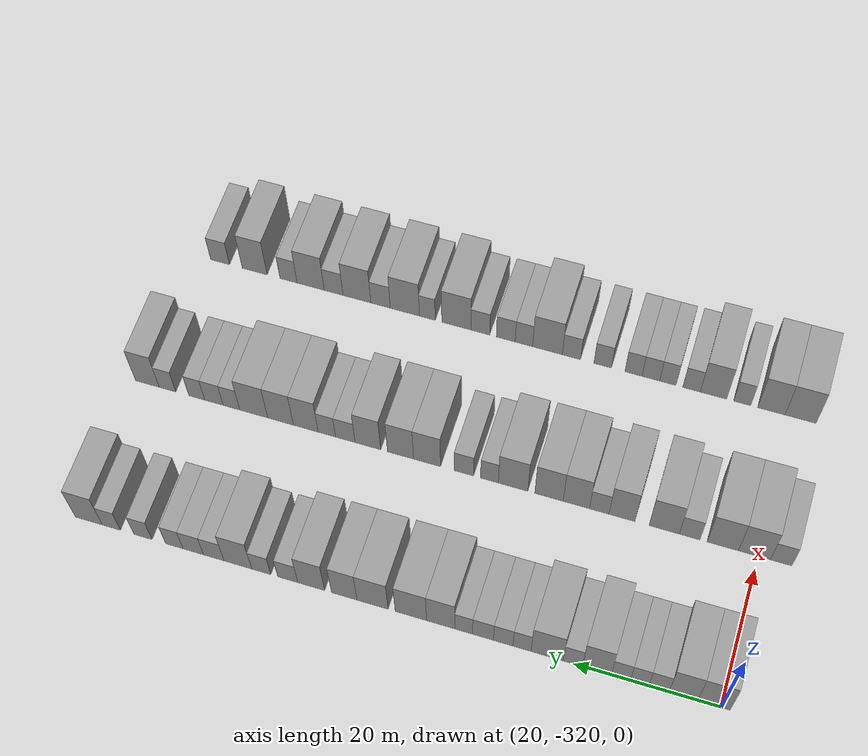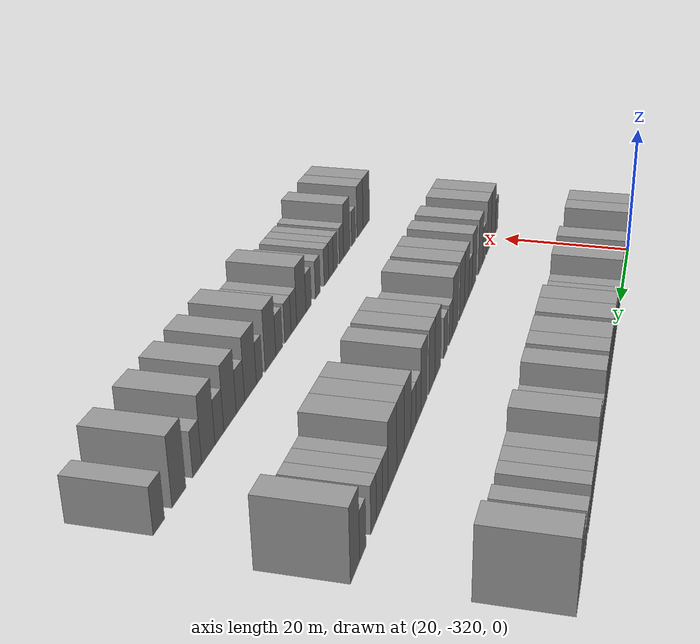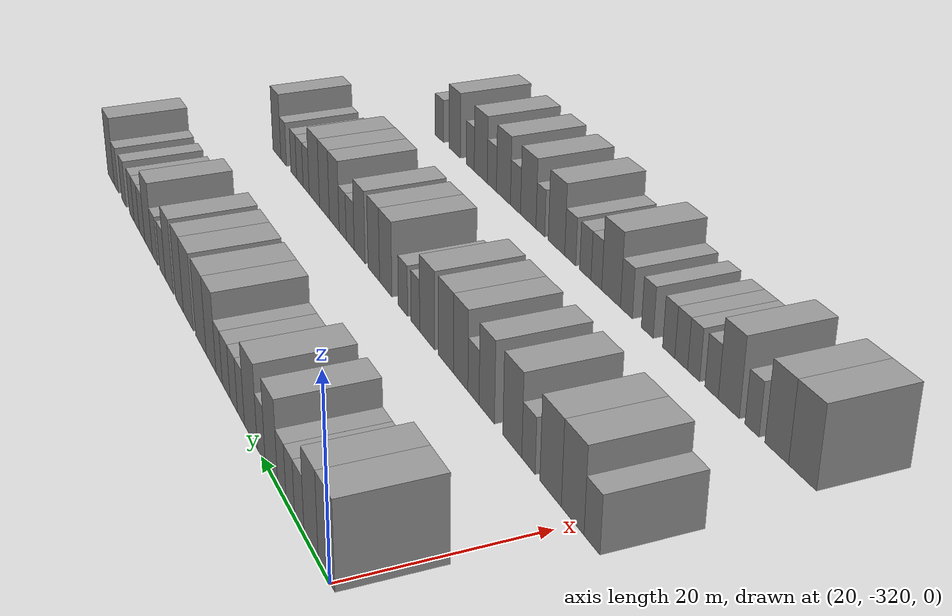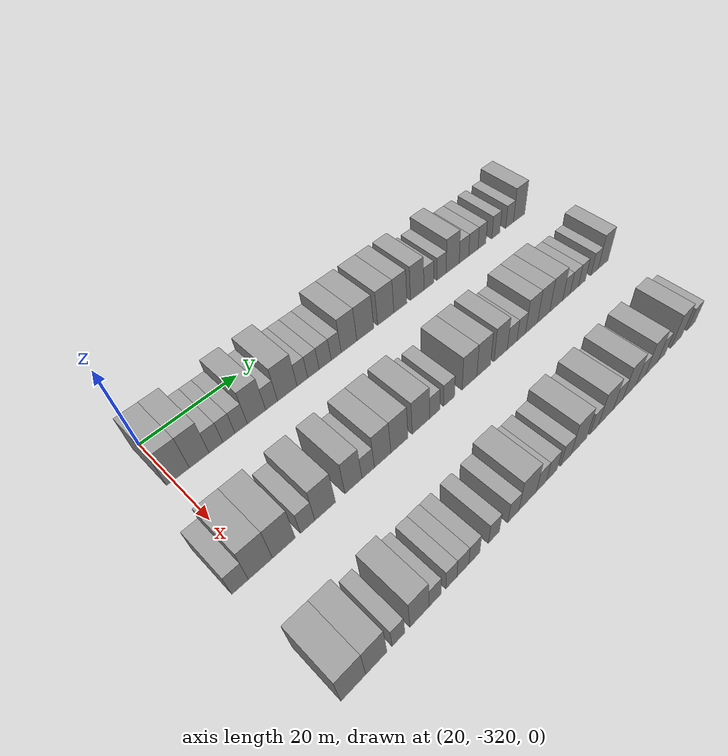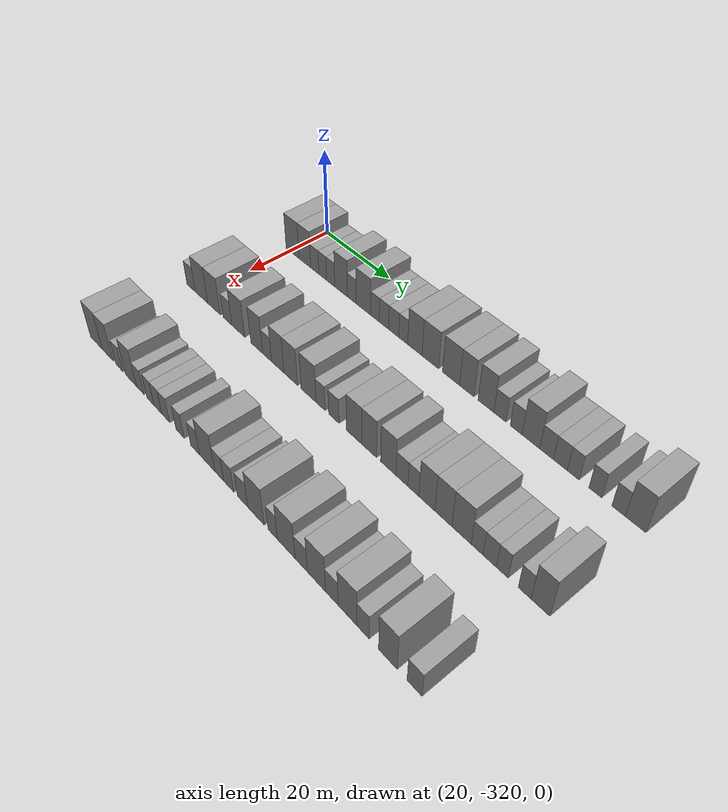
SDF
<sdf version="1.6">
 <world name="default">
  <model name="building_12">
   <static>1</static>
   <pose>25.0000 -319.0216 0 0.000000 0.000000 0.000000</pose>
   <link name="link">
    <pose>0 0 4.50 0 0 0</pose>
    <collision name="collision"><geometry><box><size>10.0000 4.3639 9.0000</size></box></geometry></collision>
    <visual name="visual">
     <cast_shadows>0</cast_shadows>
     <geometry><box><size>10.0000 4.3639 9.0000</size></box></geometry>
     <material>
      <script>
       <uri>model://grey_wall/materials/scripts</uri>
       <uri>model://grey_wall/materials/textures</uri>
       <name>vrc/grey_wall</name>
      </script>
     </material>
    </visual>
   </link>
  </model>
  <model name="building_13">
   <static>1</static>
   <pose>25.0000 -314.9039 0 0.000000 0.000000 0.000000</pose>
   <link name="link">
    <pose>0 0 4.50 0 0 0</pose>
    <collision name="collision"><geometry><box><size>10.0000 3.8716 9.0000</size></box></geometry></collision>
    <visual name="visual">
     <cast_shadows>0</cast_shadows>
     <geometry><box><size>10.0000 3.8716 9.0000</size></box></geometry>
     <material>
      <script>
       <uri>model://grey_wall/materials/scripts</uri>
       <uri>model://grey_wall/materials/textures</uri>
       <name>vrc/grey_wall</name>
      </script>
     </material>
    </visual>
   </link>
  </model>
  <model name="building_14">
   <static>1</static>
   <pose>25.0000 -311.6025 0 0.000000 0.000000 0.000000</pose>
   <link name="link">
    <pose>0 0 3.00 0 0 0</pose>
    <collision name="collision"><geometry><box><size>10.0000 2.7310 6.0000</size></box></geometry></collision>
    <visual name="visual">
     <cast_shadows>0</cast_shadows>
     <geometry><box><size>10.0000 2.7310 6.0000</size></box></geometry>
     <material>
      <script>
       <uri>model://grey_wall/materials/scripts</uri>
       <uri>model://grey_wall/materials/textures</uri>
       <name>vrc/grey_wall</name>
      </script>
     </material>
    </visual>
   </link>
  </model>
  <model name="building_15">
   <static>1</static>
   <pose>25.0000 -308.9841 0 0.000000 0.000000 0.000000</pose>
   <link name="link">
    <pose>0 0 3.00 0 0 0</pose>
    <collision name="collision"><geometry><box><size>10.0000 2.5059 6.0000</size></box></geometry></collision>
    <visual name="visual">
     <cast_shadows>0</cast_shadows>
     <geometry><box><size>10.0000 2.5059 6.0000</size></box></geometry>
     <material>
      <script>
       <uri>model://grey_wall/materials/scripts</uri>
       <uri>model://grey_wall/materials/textures</uri>
       <name>vrc/grey_wall</name>
      </script>
     </material>
    </visual>
   </link>
  </model>
  <model name="building_16">
   <static>1</static>
   <pose>25.0000 -306.4358 0 0.000000 0.000000 0.000000</pose>
   <link name="link">
    <pose>0 0 3.00 0 0 0</pose>
    <collision name="collision"><geometry><box><size>10.0000 2.5905 6.0000</size></box></geometry></collision>
    <visual name="visual">
     <cast_shadows>0</cast_shadows>
     <geometry><box><size>10.0000 2.5905 6.0000</size></box></geometry>
     <material>
      <script>
       <uri>model://grey_wall/materials/scripts</uri>
       <uri>model://grey_wall/materials/textures</uri>
       <name>vrc/grey_wall</name>
      </script>
     </material>
    </visual>
   </link>
  </model>
  <model name="building_17">
   <static>1</static>
   <pose>25.0000 -303.1748 0 0.000000 0.000000 0.000000</pose>
   <link name="link">
    <pose>0 0 4.50 0 0 0</pose>
    <collision name="collision"><geometry><box><size>10.0000 3.9315 9.0000</size></box></geometry></collision>
    <visual name="visual">
     <cast_shadows>0</cast_shadows>
     <geometry><box><size>10.0000 3.9315 9.0000</size></box></geometry>
     <material>
      <script>
       <uri>model://grey_wall/materials/scripts</uri>
       <uri>model://grey_wall/materials/textures</uri>
       <name>vrc/grey_wall</name>
      </script>
     </material>
    </visual>
   </link>
  </model>
  <model name="building_18">
   <static>1</static>
   <pose>25.0000 -299.8987 0 0.000000 0.000000 0.000000</pose>
   <link name="link">
    <pose>0 0 3.00 0 0 0</pose>
    <collision name="collision"><geometry><box><size>10.0000 2.6207 6.0000</size></box></geometry></collision>
    <visual name="visual">
     <cast_shadows>0</cast_shadows>
     <geometry><box><size>10.0000 2.6207 6.0000</size></box></geometry>
     <material>
      <script>
       <uri>model://grey_wall/materials/scripts</uri>
       <uri>model://grey_wall/materials/textures</uri>
       <name>vrc/grey_wall</name>
      </script>
     </material>
    </visual>
   </link>
  </model>
  <model name="building_19">
   <static>1</static>
   <pose>25.0000 -296.3752 0 0.000000 0.000000 0.000000</pose>
   <link name="link">
    <pose>0 0 4.50 0 0 0</pose>
    <collision name="collision"><geometry><box><size>10.0000 4.4264 9.0000</size></box></geometry></collision>
    <visual name="visual">
     <cast_shadows>0</cast_shadows>
     <geometry><box><size>10.0000 4.4264 9.0000</size></box></geometry>
     <material>
      <script>
       <uri>model://grey_wall/materials/scripts</uri>
       <uri>model://grey_wall/materials/textures</uri>
       <name>vrc/grey_wall</name>
      </script>
     </material>
    </visual>
   </link>
  </model>
  <model name="building_20">
   <static>1</static>
   <pose>25.0000 -292.9211 0 0.000000 0.000000 0.000000</pose>
   <link name="link">
    <pose>0 0 3.00 0 0 0</pose>
    <collision name="collision"><geometry><box><size>10.0000 2.4818 6.0000</size></box></geometry></collision>
    <visual name="visual">
     <cast_shadows>0</cast_shadows>
     <geometry><box><size>10.0000 2.4818 6.0000</size></box></geometry>
     <material>
      <script>
       <uri>model://grey_wall/materials/scripts</uri>
       <uri>model://grey_wall/materials/textures</uri>
       <name>vrc/grey_wall</name>
      </script>
     </material>
    </visual>
   </link>
  </model>
  <model name="building_21">
   <static>1</static>
   <pose>25.0000 -290.3262 0 0.000000 0.000000 0.000000</pose>
   <link name="link">
    <pose>0 0 3.00 0 0 0</pose>
    <collision name="collision"><geometry><box><size>10.0000 2.7080 6.0000</size></box></geometry></collision>
    <visual name="visual">
     <cast_shadows>0</cast_shadows>
     <geometry><box><size>10.0000 2.7080 6.0000</size></box></geometry>
     <material>
      <script>
       <uri>model://grey_wall/materials/scripts</uri>
       <uri>model://grey_wall/materials/textures</uri>
       <name>vrc/grey_wall</name>
      </script>
     </material>
    </visual>
   </link>
  </model>
  <model name="building_22">
   <static>1</static>
   <pose>25.0000 -287.5246 0 0.000000 0.000000 0.000000</pose>
   <link name="link">
    <pose>0 0 3.00 0 0 0</pose>
    <collision name="collision"><geometry><box><size>10.0000 2.8952 6.0000</size></box></geometry></collision>
    <visual name="visual">
     <cast_shadows>0</cast_shadows>
     <geometry><box><size>10.0000 2.8952 6.0000</size></box></geometry>
     <material>
      <script>
       <uri>model://grey_wall/materials/scripts</uri>
       <uri>model://grey_wall/materials/textures</uri>
       <name>vrc/grey_wall</name>
      </script>
     </material>
    </visual>
   </link>
  </model>
  <model name="building_23">
   <static>1</static>
   <pose>25.0000 -284.8401 0 0.000000 0.000000 0.000000</pose>
   <link name="link">
    <pose>0 0 3.00 0 0 0</pose>
    <collision name="collision"><geometry><box><size>10.0000 2.4737 6.0000</size></box></geometry></collision>
    <visual name="visual">
     <cast_shadows>0</cast_shadows>
     <geometry><box><size>10.0000 2.4737 6.0000</size></box></geometry>
     <material>
      <script>
       <uri>model://grey_wall/materials/scripts</uri>
       <uri>model://grey_wall/materials/textures</uri>
       <name>vrc/grey_wall</name>
      </script>
     </material>
    </visual>
   </link>
  </model>
  <model name="building_24">
   <static>1</static>
   <pose>25.0000 -281.6350 0 0.000000 0.000000 0.000000</pose>
   <link name="link">
    <pose>0 0 4.50 0 0 0</pose>
    <collision name="collision"><geometry><box><size>10.0000 3.9365 9.0000</size></box></geometry></collision>
    <visual name="visual">
     <cast_shadows>0</cast_shadows>
     <geometry><box><size>10.0000 3.9365 9.0000</size></box></geometry>
     <material>
      <script>
       <uri>model://grey_wall/materials/scripts</uri>
       <uri>model://grey_wall/materials/textures</uri>
       <name>vrc/grey_wall</name>
      </script>
     </material>
    </visual>
   </link>
  </model>
  <model name="building_25">
   <static>1</static>
   <pose>25.0000 -277.4600 0 0.000000 0.000000 0.000000</pose>
   <link name="link">
    <pose>0 0 4.50 0 0 0</pose>
    <collision name="collision"><geometry><box><size>10.0000 4.4136 9.0000</size></box></geometry></collision>
    <visual name="visual">
     <cast_shadows>0</cast_shadows>
     <geometry><box><size>10.0000 4.4136 9.0000</size></box></geometry>
     <material>
      <script>
       <uri>model://grey_wall/materials/scripts</uri>
       <uri>model://grey_wall/materials/textures</uri>
       <name>vrc/grey_wall</name>
      </script>
     </material>
    </visual>
   </link>
  </model>
  <model name="building_26">
   <static>1</static>
   <pose>25.0000 -272.0558 0 0.000000 0.000000 0.000000</pose>
   <link name="link">
    <pose>0 0 4.50 0 0 0</pose>
    <collision name="collision"><geometry><box><size>10.0000 4.3947 9.0000</size></box></geometry></collision>
    <visual name="visual">
     <cast_shadows>0</cast_shadows>
     <geometry><box><size>10.0000 4.3947 9.0000</size></box></geometry>
     <material>
      <script>
       <uri>model://grey_wall/materials/scripts</uri>
       <uri>model://grey_wall/materials/textures</uri>
       <name>vrc/grey_wall</name>
      </script>
     </material>
    </visual>
   </link>
  </model>
  <model name="building_27">
   <static>1</static>
   <pose>25.0000 -268.0545 0 0.000000 0.000000 0.000000</pose>
   <link name="link">
    <pose>0 0 4.50 0 0 0</pose>
    <collision name="collision"><geometry><box><size>10.0000 3.6079 9.0000</size></box></geometry></collision>
    <visual name="visual">
     <cast_shadows>0</cast_shadows>
     <geometry><box><size>10.0000 3.6079 9.0000</size></box></geometry>
     <material>
      <script>
       <uri>model://grey_wall/materials/scripts</uri>
       <uri>model://grey_wall/materials/textures</uri>
       <name>vrc/grey_wall</name>
      </script>
     </material>
    </visual>
   </link>
  </model>
  <model name="building_28">
   <static>1</static>
   <pose>25.0000 -263.3341 0 0.000000 0.000000 0.000000</pose>
   <link name="link">
    <pose>0 0 4.50 0 0 0</pose>
    <collision name="collision"><geometry><box><size>10.0000 3.8330 9.0000</size></box></geometry></collision>
    <visual name="visual">
     <cast_shadows>0</cast_shadows>
     <geometry><box><size>10.0000 3.8330 9.0000</size></box></geometry>
     <material>
      <script>
       <uri>model://grey_wall/materials/scripts</uri>
       <uri>model://grey_wall/materials/textures</uri>
       <name>vrc/grey_wall</name>
      </script>
     </material>
    </visual>
   </link>
  </model>
  <model name="building_29">
   <static>1</static>
   <pose>25.0000 -259.9843 0 0.000000 0.000000 0.000000</pose>
   <link name="link">
    <pose>0 0 3.00 0 0 0</pose>
    <collision name="collision"><geometry><box><size>10.0000 2.8665 6.0000</size></box></geometry></collision>
    <visual name="visual">
     <cast_shadows>0</cast_shadows>
     <geometry><box><size>10.0000 2.8665 6.0000</size></box></geometry>
     <material>
      <script>
       <uri>model://grey_wall/materials/scripts</uri>
       <uri>model://grey_wall/materials/textures</uri>
       <name>vrc/grey_wall</name>
      </script>
     </material>
    </visual>
   </link>
  </model>
  <model name="building_30">
   <static>1</static>
   <pose>25.0000 -256.1881 0 0.000000 0.000000 0.000000</pose>
   <link name="link">
    <pose>0 0 3.00 0 0 0</pose>
    <collision name="collision"><geometry><box><size>10.0000 2.7260 6.0000</size></box></geometry></collision>
    <visual name="visual">
     <cast_shadows>0</cast_shadows>
     <geometry><box><size>10.0000 2.7260 6.0000</size></box></geometry>
     <material>
      <script>
       <uri>model://grey_wall/materials/scripts</uri>
       <uri>model://grey_wall/materials/textures</uri>
       <name>vrc/grey_wall</name>
      </script>
     </material>
    </visual>
   </link>
  </model>
  <model name="building_31">
   <static>1</static>
   <pose>25.0000 -252.8242 0 0.000000 0.000000 0.000000</pose>
   <link name="link">
    <pose>0 0 4.50 0 0 0</pose>
    <collision name="collision"><geometry><box><size>10.0000 4.0017 9.0000</size></box></geometry></collision>
    <visual name="visual">
     <cast_shadows>0</cast_shadows>
     <geometry><box><size>10.0000 4.0017 9.0000</size></box></geometry>
     <material>
      <script>
       <uri>model://grey_wall/materials/scripts</uri>
       <uri>model://grey_wall/materials/textures</uri>
       <name>vrc/grey_wall</name>
      </script>
     </material>
    </visual>
   </link>
  </model>
  <model name="building_32">
   <static>1</static>
   <pose>25.0000 -249.3260 0 0.000000 0.000000 0.000000</pose>
   <link name="link">
    <pose>0 0 3.00 0 0 0</pose>
    <collision name="collision"><geometry><box><size>10.0000 2.9947 6.0000</size></box></geometry></collision>
    <visual name="visual">
     <cast_shadows>0</cast_shadows>
     <geometry><box><size>10.0000 2.9947 6.0000</size></box></geometry>
     <material>
      <script>
       <uri>model://grey_wall/materials/scripts</uri>
       <uri>model://grey_wall/materials/textures</uri>
       <name>vrc/grey_wall</name>
      </script>
     </material>
    </visual>
   </link>
  </model>
  <model name="building_33">
   <static>1</static>
   <pose>25.0000 -246.3432 0 0.000000 0.000000 0.000000</pose>
   <link name="link">
    <pose>0 0 3.00 0 0 0</pose>
    <collision name="collision"><geometry><box><size>10.0000 2.9708 6.0000</size></box></geometry></collision>
    <visual name="visual">
     <cast_shadows>0</cast_shadows>
     <geometry><box><size>10.0000 2.9708 6.0000</size></box></geometry>
     <material>
      <script>
       <uri>model://grey_wall/materials/scripts</uri>
       <uri>model://grey_wall/materials/textures</uri>
       <name>vrc/grey_wall</name>
      </script>
     </material>
    </visual>
   </link>
  </model>
  <model name="building_34">
   <static>1</static>
   <pose>25.0000 -243.5842 0 0.000000 0.000000 0.000000</pose>
   <link name="link">
    <pose>0 0 3.00 0 0 0</pose>
    <collision name="collision"><geometry><box><size>10.0000 2.5471 6.0000</size></box></geometry></collision>
    <visual name="visual">
     <cast_shadows>0</cast_shadows>
     <geometry><box><size>10.0000 2.5471 6.0000</size></box></geometry>
     <material>
      <script>
       <uri>model://grey_wall/materials/scripts</uri>
       <uri>model://grey_wall/materials/textures</uri>
       <name>vrc/grey_wall</name>
      </script>
     </material>
    </visual>
   </link>
  </model>
  <model name="building_35">
   <static>1</static>
   <pose>25.0000 -238.9845 0 0.000000 0.000000 0.000000</pose>
   <link name="link">
    <pose>0 0 3.00 0 0 0</pose>
    <collision name="collision"><geometry><box><size>10.0000 2.6523 6.0000</size></box></geometry></collision>
    <visual name="visual">
     <cast_shadows>0</cast_shadows>
     <geometry><box><size>10.0000 2.6523 6.0000</size></box></geometry>
     <material>
      <script>
       <uri>model://grey_wall/materials/scripts</uri>
       <uri>model://grey_wall/materials/textures</uri>
       <name>vrc/grey_wall</name>
      </script>
     </material>
    </visual>
   </link>
  </model>
  <model name="building_36">
   <static>1</static>
   <pose>25.0000 -234.3334 0 0.000000 0.000000 0.000000</pose>
   <link name="link">
    <pose>0 0 3.00 0 0 0</pose>
    <collision name="collision"><geometry><box><size>10.0000 2.6500 6.0000</size></box></geometry></collision>
    <visual name="visual">
     <cast_shadows>0</cast_shadows>
     <geometry><box><size>10.0000 2.6500 6.0000</size></box></geometry>
     <material>
      <script>
       <uri>model://grey_wall/materials/scripts</uri>
       <uri>model://grey_wall/materials/textures</uri>
       <name>vrc/grey_wall</name>
      </script>
     </material>
    </visual>
   </link>
  </model>
  <model name="building_37">
   <static>1</static>
   <pose>25.0000 -231.0118 0 0.000000 0.000000 0.000000</pose>
   <link name="link">
    <pose>0 0 4.50 0 0 0</pose>
    <collision name="collision"><geometry><box><size>10.0000 3.9930 9.0000</size></box></geometry></collision>
    <visual name="visual">
     <cast_shadows>0</cast_shadows>
     <geometry><box><size>10.0000 3.9930 9.0000</size></box></geometry>
     <material>
      <script>
       <uri>model://grey_wall/materials/scripts</uri>
       <uri>model://grey_wall/materials/textures</uri>
       <name>vrc/grey_wall</name>
      </script>
     </material>
    </visual>
   </link>
  </model>
  <model name="building_202">
   <static>1</static>
   <pose>47.0000 -323.1811 0 0.000000 0.000000 0.000000</pose>
   <link name="link">
    <pose>0 0 3.00 0 0 0</pose>
    <collision name="collision"><geometry><box><size>10.0000 2.9801 6.0000</size></box></geometry></collision>
    <visual name="visual">
     <cast_shadows>0</cast_shadows>
     <geometry><box><size>10.0000 2.9801 6.0000</size></box></geometry>
     <material>
      <script>
       <uri>model://grey_wall/materials/scripts</uri>
       <uri>model://grey_wall/materials/textures</uri>
       <name>vrc/grey_wall</name>
      </script>
     </material>
    </visual>
   </link>
  </model>
  <model name="building_203">
   <static>1</static>
   <pose>47.0000 -319.4711 0 0.000000 0.000000 0.000000</pose>
   <link name="link">
    <pose>0 0 4.50 0 0 0</pose>
    <collision name="collision"><geometry><box><size>10.0000 4.4400 9.0000</size></box></geometry></collision>
    <visual name="visual">
     <cast_shadows>0</cast_shadows>
     <geometry><box><size>10.0000 4.4400 9.0000</size></box></geometry>
     <material>
      <script>
       <uri>model://grey_wall/materials/scripts</uri>
       <uri>model://grey_wall/materials/textures</uri>
       <name>vrc/grey_wall</name>
      </script>
     </material>
    </visual>
   </link>
  </model>
  <model name="building_204">
   <static>1</static>
   <pose>47.0000 -315.0537 0 0.000000 0.000000 0.000000</pose>
   <link name="link">
    <pose>0 0 4.50 0 0 0</pose>
    <collision name="collision"><geometry><box><size>10.0000 4.3947 9.0000</size></box></geometry></collision>
    <visual name="visual">
     <cast_shadows>0</cast_shadows>
     <geometry><box><size>10.0000 4.3947 9.0000</size></box></geometry>
     <material>
      <script>
       <uri>model://grey_wall/materials/scripts</uri>
       <uri>model://grey_wall/materials/textures</uri>
       <name>vrc/grey_wall</name>
      </script>
     </material>
    </visual>
   </link>
  </model>
  <model name="building_205">
   <static>1</static>
   <pose>47.0000 -310.4044 0 0.000000 0.000000 0.000000</pose>
   <link name="link">
    <pose>0 0 3.00 0 0 0</pose>
    <collision name="collision"><geometry><box><size>10.0000 2.9040 6.0000</size></box></geometry></collision>
    <visual name="visual">
     <cast_shadows>0</cast_shadows>
     <geometry><box><size>10.0000 2.9040 6.0000</size></box></geometry>
     <material>
      <script>
       <uri>model://grey_wall/materials/scripts</uri>
       <uri>model://grey_wall/materials/textures</uri>
       <name>vrc/grey_wall</name>
      </script>
     </material>
    </visual>
   </link>
  </model>
  <model name="building_206">
   <static>1</static>
   <pose>47.0000 -306.8238 0 0.000000 0.000000 0.000000</pose>
   <link name="link">
    <pose>0 0 4.50 0 0 0</pose>
    <collision name="collision"><geometry><box><size>10.0000 4.2571 9.0000</size></box></geometry></collision>
    <visual name="visual">
     <cast_shadows>0</cast_shadows>
     <geometry><box><size>10.0000 4.2571 9.0000</size></box></geometry>
     <material>
      <script>
       <uri>model://grey_wall/materials/scripts</uri>
       <uri>model://grey_wall/materials/textures</uri>
       <name>vrc/grey_wall</name>
      </script>
     </material>
    </visual>
   </link>
  </model>
  <model name="building_207">
   <static>1</static>
   <pose>47.0000 -300.8416 0 0.000000 0.000000 0.000000</pose>
   <link name="link">
    <pose>0 0 4.50 0 0 0</pose>
    <collision name="collision"><geometry><box><size>10.0000 3.7074 9.0000</size></box></geometry></collision>
    <visual name="visual">
     <cast_shadows>0</cast_shadows>
     <geometry><box><size>10.0000 3.7074 9.0000</size></box></geometry>
     <material>
      <script>
       <uri>model://grey_wall/materials/scripts</uri>
       <uri>model://grey_wall/materials/textures</uri>
       <name>vrc/grey_wall</name>
      </script>
     </material>
    </visual>
   </link>
  </model>
  <model name="building_208">
   <static>1</static>
   <pose>47.0000 -297.5994 0 0.000000 0.000000 0.000000</pose>
   <link name="link">
    <pose>0 0 3.00 0 0 0</pose>
    <collision name="collision"><geometry><box><size>10.0000 2.7769 6.0000</size></box></geometry></collision>
    <visual name="visual">
     <cast_shadows>0</cast_shadows>
     <geometry><box><size>10.0000 2.7769 6.0000</size></box></geometry>
     <material>
      <script>
       <uri>model://grey_wall/materials/scripts</uri>
       <uri>model://grey_wall/materials/textures</uri>
       <name>vrc/grey_wall</name>
      </script>
     </material>
    </visual>
   </link>
  </model>
  <model name="building_209">
   <static>1</static>
   <pose>47.0000 -294.3260 0 0.000000 0.000000 0.000000</pose>
   <link name="link">
    <pose>0 0 4.50 0 0 0</pose>
    <collision name="collision"><geometry><box><size>10.0000 3.7700 9.0000</size></box></geometry></collision>
    <visual name="visual">
     <cast_shadows>0</cast_shadows>
     <geometry><box><size>10.0000 3.7700 9.0000</size></box></geometry>
     <material>
      <script>
       <uri>model://grey_wall/materials/scripts</uri>
       <uri>model://grey_wall/materials/textures</uri>
       <name>vrc/grey_wall</name>
      </script>
     </material>
    </visual>
   </link>
  </model>
  <model name="building_210">
   <static>1</static>
   <pose>47.0000 -290.4123 0 0.000000 0.000000 0.000000</pose>
   <link name="link">
    <pose>0 0 4.50 0 0 0</pose>
    <collision name="collision"><geometry><box><size>10.0000 4.0572 9.0000</size></box></geometry></collision>
    <visual name="visual">
     <cast_shadows>0</cast_shadows>
     <geometry><box><size>10.0000 4.0572 9.0000</size></box></geometry>
     <material>
      <script>
       <uri>model://grey_wall/materials/scripts</uri>
       <uri>model://grey_wall/materials/textures</uri>
       <name>vrc/grey_wall</name>
      </script>
     </material>
    </visual>
   </link>
  </model>
  <model name="building_211">
   <static>1</static>
   <pose>47.0000 -285.2453 0 0.000000 0.000000 0.000000</pose>
   <link name="link">
    <pose>0 0 4.50 0 0 0</pose>
    <collision name="collision"><geometry><box><size>10.0000 4.2769 9.0000</size></box></geometry></collision>
    <visual name="visual">
     <cast_shadows>0</cast_shadows>
     <geometry><box><size>10.0000 4.2769 9.0000</size></box></geometry>
     <material>
      <script>
       <uri>model://grey_wall/materials/scripts</uri>
       <uri>model://grey_wall/materials/textures</uri>
       <name>vrc/grey_wall</name>
      </script>
     </material>
    </visual>
   </link>
  </model>
  <model name="building_212">
   <static>1</static>
   <pose>47.0000 -281.8236 0 0.000000 0.000000 0.000000</pose>
   <link name="link">
    <pose>0 0 3.00 0 0 0</pose>
    <collision name="collision"><geometry><box><size>10.0000 2.5663 6.0000</size></box></geometry></collision>
    <visual name="visual">
     <cast_shadows>0</cast_shadows>
     <geometry><box><size>10.0000 2.5663 6.0000</size></box></geometry>
     <material>
      <script>
       <uri>model://grey_wall/materials/scripts</uri>
       <uri>model://grey_wall/materials/textures</uri>
       <name>vrc/grey_wall</name>
      </script>
     </material>
    </visual>
   </link>
  </model>
  <model name="building_213">
   <static>1</static>
   <pose>47.0000 -278.1265 0 0.000000 0.000000 0.000000</pose>
   <link name="link">
    <pose>0 0 3.00 0 0 0</pose>
    <collision name="collision"><geometry><box><size>10.0000 2.8280 6.0000</size></box></geometry></collision>
    <visual name="visual">
     <cast_shadows>0</cast_shadows>
     <geometry><box><size>10.0000 2.8280 6.0000</size></box></geometry>
     <material>
      <script>
       <uri>model://grey_wall/materials/scripts</uri>
       <uri>model://grey_wall/materials/textures</uri>
       <name>vrc/grey_wall</name>
      </script>
     </material>
    </visual>
   </link>
  </model>
  <model name="building_214">
   <static>1</static>
   <pose>47.0000 -272.7263 0 0.000000 0.000000 0.000000</pose>
   <link name="link">
    <pose>0 0 4.50 0 0 0</pose>
    <collision name="collision"><geometry><box><size>10.0000 3.9725 9.0000</size></box></geometry></collision>
    <visual name="visual">
     <cast_shadows>0</cast_shadows>
     <geometry><box><size>10.0000 3.9725 9.0000</size></box></geometry>
     <material>
      <script>
       <uri>model://grey_wall/materials/scripts</uri>
       <uri>model://grey_wall/materials/textures</uri>
       <name>vrc/grey_wall</name>
      </script>
     </material>
    </visual>
   </link>
  </model>
  <model name="building_215">
   <static>1</static>
   <pose>47.0000 -268.8265 0 0.000000 0.000000 0.000000</pose>
   <link name="link">
    <pose>0 0 4.50 0 0 0</pose>
    <collision name="collision"><geometry><box><size>10.0000 3.8269 9.0000</size></box></geometry></collision>
    <visual name="visual">
     <cast_shadows>0</cast_shadows>
     <geometry><box><size>10.0000 3.8269 9.0000</size></box></geometry>
     <material>
      <script>
       <uri>model://grey_wall/materials/scripts</uri>
       <uri>model://grey_wall/materials/textures</uri>
       <name>vrc/grey_wall</name>
      </script>
     </material>
    </visual>
   </link>
  </model>
  <model name="building_216">
   <static>1</static>
   <pose>47.0000 -264.0176 0 0.000000 0.000000 0.000000</pose>
   <link name="link">
    <pose>0 0 4.50 0 0 0</pose>
    <collision name="collision"><geometry><box><size>10.0000 3.7909 9.0000</size></box></geometry></collision>
    <visual name="visual">
     <cast_shadows>0</cast_shadows>
     <geometry><box><size>10.0000 3.7909 9.0000</size></box></geometry>
     <material>
      <script>
       <uri>model://grey_wall/materials/scripts</uri>
       <uri>model://grey_wall/materials/textures</uri>
       <name>vrc/grey_wall</name>
      </script>
     </material>
    </visual>
   </link>
  </model>
  <model name="building_217">
   <static>1</static>
   <pose>47.0000 -260.6690 0 0.000000 0.000000 0.000000</pose>
   <link name="link">
    <pose>0 0 3.00 0 0 0</pose>
    <collision name="collision"><geometry><box><size>10.0000 2.9064 6.0000</size></box></geometry></collision>
    <visual name="visual">
     <cast_shadows>0</cast_shadows>
     <geometry><box><size>10.0000 2.9064 6.0000</size></box></geometry>
     <material>
      <script>
       <uri>model://grey_wall/materials/scripts</uri>
       <uri>model://grey_wall/materials/textures</uri>
       <name>vrc/grey_wall</name>
      </script>
     </material>
    </visual>
   </link>
  </model>
  <model name="building_218">
   <static>1</static>
   <pose>47.0000 -257.9251 0 0.000000 0.000000 0.000000</pose>
   <link name="link">
    <pose>0 0 3.00 0 0 0</pose>
    <collision name="collision"><geometry><box><size>10.0000 2.5814 6.0000</size></box></geometry></collision>
    <visual name="visual">
     <cast_shadows>0</cast_shadows>
     <geometry><box><size>10.0000 2.5814 6.0000</size></box></geometry>
     <material>
      <script>
       <uri>model://grey_wall/materials/scripts</uri>
       <uri>model://grey_wall/materials/textures</uri>
       <name>vrc/grey_wall</name>
      </script>
     </material>
    </visual>
   </link>
  </model>
  <model name="building_219">
   <static>1</static>
   <pose>47.0000 -254.7875 0 0.000000 0.000000 0.000000</pose>
   <link name="link">
    <pose>0 0 4.50 0 0 0</pose>
    <collision name="collision"><geometry><box><size>10.0000 3.6937 9.0000</size></box></geometry></collision>
    <visual name="visual">
     <cast_shadows>0</cast_shadows>
     <geometry><box><size>10.0000 3.6937 9.0000</size></box></geometry>
     <material>
      <script>
       <uri>model://grey_wall/materials/scripts</uri>
       <uri>model://grey_wall/materials/textures</uri>
       <name>vrc/grey_wall</name>
      </script>
     </material>
    </visual>
   </link>
  </model>
  <model name="building_220">
   <static>1</static>
   <pose>47.0000 -251.0122 0 0.000000 0.000000 0.000000</pose>
   <link name="link">
    <pose>0 0 4.50 0 0 0</pose>
    <collision name="collision"><geometry><box><size>10.0000 3.8569 9.0000</size></box></geometry></collision>
    <visual name="visual">
     <cast_shadows>0</cast_shadows>
     <geometry><box><size>10.0000 3.8569 9.0000</size></box></geometry>
     <material>
      <script>
       <uri>model://grey_wall/materials/scripts</uri>
       <uri>model://grey_wall/materials/textures</uri>
       <name>vrc/grey_wall</name>
      </script>
     </material>
    </visual>
   </link>
  </model>
  <model name="building_221">
   <static>1</static>
   <pose>47.0000 -246.9754 0 0.000000 0.000000 0.000000</pose>
   <link name="link">
    <pose>0 0 4.50 0 0 0</pose>
    <collision name="collision"><geometry><box><size>10.0000 4.2168 9.0000</size></box></geometry></collision>
    <visual name="visual">
     <cast_shadows>0</cast_shadows>
     <geometry><box><size>10.0000 4.2168 9.0000</size></box></geometry>
     <material>
      <script>
       <uri>model://grey_wall/materials/scripts</uri>
       <uri>model://grey_wall/materials/textures</uri>
       <name>vrc/grey_wall</name>
      </script>
     </material>
    </visual>
   </link>
  </model>
  <model name="building_222">
   <static>1</static>
   <pose>47.0000 -243.6121 0 0.000000 0.000000 0.000000</pose>
   <link name="link">
    <pose>0 0 3.00 0 0 0</pose>
    <collision name="collision"><geometry><box><size>10.0000 2.5097 6.0000</size></box></geometry></collision>
    <visual name="visual">
     <cast_shadows>0</cast_shadows>
     <geometry><box><size>10.0000 2.5097 6.0000</size></box></geometry>
     <material>
      <script>
       <uri>model://grey_wall/materials/scripts</uri>
       <uri>model://grey_wall/materials/textures</uri>
       <name>vrc/grey_wall</name>
      </script>
     </material>
    </visual>
   </link>
  </model>
  <model name="building_223">
   <static>1</static>
   <pose>47.0000 -240.9663 0 0.000000 0.000000 0.000000</pose>
   <link name="link">
    <pose>0 0 3.00 0 0 0</pose>
    <collision name="collision"><geometry><box><size>10.0000 2.7819 6.0000</size></box></geometry></collision>
    <visual name="visual">
     <cast_shadows>0</cast_shadows>
     <geometry><box><size>10.0000 2.7819 6.0000</size></box></geometry>
     <material>
      <script>
       <uri>model://grey_wall/materials/scripts</uri>
       <uri>model://grey_wall/materials/textures</uri>
       <name>vrc/grey_wall</name>
      </script>
     </material>
    </visual>
   </link>
  </model>
  <model name="building_224">
   <static>1</static>
   <pose>47.0000 -238.3632 0 0.000000 0.000000 0.000000</pose>
   <link name="link">
    <pose>0 0 3.00 0 0 0</pose>
    <collision name="collision"><geometry><box><size>10.0000 2.4244 6.0000</size></box></geometry></collision>
    <visual name="visual">
     <cast_shadows>0</cast_shadows>
     <geometry><box><size>10.0000 2.4244 6.0000</size></box></geometry>
     <material>
      <script>
       <uri>model://grey_wall/materials/scripts</uri>
       <uri>model://grey_wall/materials/textures</uri>
       <name>vrc/grey_wall</name>
      </script>
     </material>
    </visual>
   </link>
  </model>
  <model name="building_225">
   <static>1</static>
   <pose>47.0000 -233.8902 0 0.000000 0.000000 0.000000</pose>
   <link name="link">
    <pose>0 0 3.00 0 0 0</pose>
    <collision name="collision"><geometry><box><size>10.0000 2.5216 6.0000</size></box></geometry></collision>
    <visual name="visual">
     <cast_shadows>0</cast_shadows>
     <geometry><box><size>10.0000 2.5216 6.0000</size></box></geometry>
     <material>
      <script>
       <uri>model://grey_wall/materials/scripts</uri>
       <uri>model://grey_wall/materials/textures</uri>
       <name>vrc/grey_wall</name>
      </script>
     </material>
    </visual>
   </link>
  </model>
  <model name="building_226">
   <static>1</static>
   <pose>47.0000 -230.8095 0 0.000000 0.000000 0.000000</pose>
   <link name="link">
    <pose>0 0 4.50 0 0 0</pose>
    <collision name="collision"><geometry><box><size>10.0000 3.6398 9.0000</size></box></geometry></collision>
    <visual name="visual">
     <cast_shadows>0</cast_shadows>
     <geometry><box><size>10.0000 3.6398 9.0000</size></box></geometry>
     <material>
      <script>
       <uri>model://grey_wall/materials/scripts</uri>
       <uri>model://grey_wall/materials/textures</uri>
       <name>vrc/grey_wall</name>
      </script>
     </material>
    </visual>
   </link>
  </model>
  <model name="building_389">
   <static>1</static>
   <pose>69.0000 -321.1715 0 0.000000 0.000000 0.000000</pose>
   <link name="link">
    <pose>0 0 4.50 0 0 0</pose>
    <collision name="collision"><geometry><box><size>10.0000 4.4941 9.0000</size></box></geometry></collision>
    <visual name="visual">
     <cast_shadows>0</cast_shadows>
     <geometry><box><size>10.0000 4.4941 9.0000</size></box></geometry>
     <material>
      <script>
       <uri>model://grey_wall/materials/scripts</uri>
       <uri>model://grey_wall/materials/textures</uri>
       <name>vrc/grey_wall</name>
      </script>
     </material>
    </visual>
   </link>
  </model>
  <model name="building_390">
   <static>1</static>
   <pose>69.0000 -316.9465 0 0.000000 0.000000 0.000000</pose>
   <link name="link">
    <pose>0 0 4.50 0 0 0</pose>
    <collision name="collision"><geometry><box><size>10.0000 3.9558 9.0000</size></box></geometry></collision>
    <visual name="visual">
     <cast_shadows>0</cast_shadows>
     <geometry><box><size>10.0000 3.9558 9.0000</size></box></geometry>
     <material>
      <script>
       <uri>model://grey_wall/materials/scripts</uri>
       <uri>model://grey_wall/materials/textures</uri>
       <name>vrc/grey_wall</name>
      </script>
     </material>
    </visual>
   </link>
  </model>
  <model name="building_391">
   <static>1</static>
   <pose>69.0000 -312.7215 0 0.000000 0.000000 0.000000</pose>
   <link name="link">
    <pose>0 0 3.00 0 0 0</pose>
    <collision name="collision"><geometry><box><size>10.0000 2.4941 6.0000</size></box></geometry></collision>
    <visual name="visual">
     <cast_shadows>0</cast_shadows>
     <geometry><box><size>10.0000 2.4941 6.0000</size></box></geometry>
     <material>
      <script>
       <uri>model://grey_wall/materials/scripts</uri>
       <uri>model://grey_wall/materials/textures</uri>
       <name>vrc/grey_wall</name>
      </script>
     </material>
    </visual>
   </link>
  </model>
  <model name="building_392">
   <static>1</static>
   <pose>69.0000 -308.5383 0 0.000000 0.000000 0.000000</pose>
   <link name="link">
    <pose>0 0 4.50 0 0 0</pose>
    <collision name="collision"><geometry><box><size>10.0000 3.8724 9.0000</size></box></geometry></collision>
    <visual name="visual">
     <cast_shadows>0</cast_shadows>
     <geometry><box><size>10.0000 3.8724 9.0000</size></box></geometry>
     <material>
      <script>
       <uri>model://grey_wall/materials/scripts</uri>
       <uri>model://grey_wall/materials/textures</uri>
       <name>vrc/grey_wall</name>
      </script>
     </material>
    </visual>
   </link>
  </model>
  <model name="building_393">
   <static>1</static>
   <pose>69.0000 -305.3226 0 0.000000 0.000000 0.000000</pose>
   <link name="link">
    <pose>0 0 3.00 0 0 0</pose>
    <collision name="collision"><geometry><box><size>10.0000 2.5590 6.0000</size></box></geometry></collision>
    <visual name="visual">
     <cast_shadows>0</cast_shadows>
     <geometry><box><size>10.0000 2.5590 6.0000</size></box></geometry>
     <material>
      <script>
       <uri>model://grey_wall/materials/scripts</uri>
       <uri>model://grey_wall/materials/textures</uri>
       <name>vrc/grey_wall</name>
      </script>
     </material>
    </visual>
   </link>
  </model>
  <model name="building_394">
   <static>1</static>
   <pose>69.0000 -301.8409 0 0.000000 0.000000 0.000000</pose>
   <link name="link">
    <pose>0 0 3.00 0 0 0</pose>
    <collision name="collision"><geometry><box><size>10.0000 2.4045 6.0000</size></box></geometry></collision>
    <visual name="visual">
     <cast_shadows>0</cast_shadows>
     <geometry><box><size>10.0000 2.4045 6.0000</size></box></geometry>
     <material>
      <script>
       <uri>model://grey_wall/materials/scripts</uri>
       <uri>model://grey_wall/materials/textures</uri>
       <name>vrc/grey_wall</name>
      </script>
     </material>
    </visual>
   </link>
  </model>
  <model name="building_395">
   <static>1</static>
   <pose>69.0000 -299.3394 0 0.000000 0.000000 0.000000</pose>
   <link name="link">
    <pose>0 0 3.00 0 0 0</pose>
    <collision name="collision"><geometry><box><size>10.0000 2.5984 6.0000</size></box></geometry></collision>
    <visual name="visual">
     <cast_shadows>0</cast_shadows>
     <geometry><box><size>10.0000 2.5984 6.0000</size></box></geometry>
     <material>
      <script>
       <uri>model://grey_wall/materials/scripts</uri>
       <uri>model://grey_wall/materials/textures</uri>
       <name>vrc/grey_wall</name>
      </script>
     </material>
    </visual>
   </link>
  </model>
  <model name="building_396">
   <static>1</static>
   <pose>69.0000 -296.7769 0 0.000000 0.000000 0.000000</pose>
   <link name="link">
    <pose>0 0 3.00 0 0 0</pose>
    <collision name="collision"><geometry><box><size>10.0000 2.5267 6.0000</size></box></geometry></collision>
    <visual name="visual">
     <cast_shadows>0</cast_shadows>
     <geometry><box><size>10.0000 2.5267 6.0000</size></box></geometry>
     <material>
      <script>
       <uri>model://grey_wall/materials/scripts</uri>
       <uri>model://grey_wall/materials/textures</uri>
       <name>vrc/grey_wall</name>
      </script>
     </material>
    </visual>
   </link>
  </model>
  <model name="building_397">
   <static>1</static>
   <pose>69.0000 -292.2097 0 0.000000 0.000000 0.000000</pose>
   <link name="link">
    <pose>0 0 3.00 0 0 0</pose>
    <collision name="collision"><geometry><box><size>10.0000 2.6076 6.0000</size></box></geometry></collision>
    <visual name="visual">
     <cast_shadows>0</cast_shadows>
     <geometry><box><size>10.0000 2.6076 6.0000</size></box></geometry>
     <material>
      <script>
       <uri>model://grey_wall/materials/scripts</uri>
       <uri>model://grey_wall/materials/textures</uri>
       <name>vrc/grey_wall</name>
      </script>
     </material>
    </visual>
   </link>
  </model>
  <model name="building_398">
   <static>1</static>
   <pose>69.0000 -287.5438 0 0.000000 0.000000 0.000000</pose>
   <link name="link">
    <pose>0 0 3.00 0 0 0</pose>
    <collision name="collision"><geometry><box><size>10.0000 2.7244 6.0000</size></box></geometry></collision>
    <visual name="visual">
     <cast_shadows>0</cast_shadows>
     <geometry><box><size>10.0000 2.7244 6.0000</size></box></geometry>
     <material>
      <script>
       <uri>model://grey_wall/materials/scripts</uri>
       <uri>model://grey_wall/materials/textures</uri>
       <name>vrc/grey_wall</name>
      </script>
     </material>
    </visual>
   </link>
  </model>
  <model name="building_399">
   <static>1</static>
   <pose>69.0000 -283.9556 0 0.000000 0.000000 0.000000</pose>
   <link name="link">
    <pose>0 0 4.50 0 0 0</pose>
    <collision name="collision"><geometry><box><size>10.0000 4.4520 9.0000</size></box></geometry></collision>
    <visual name="visual">
     <cast_shadows>0</cast_shadows>
     <geometry><box><size>10.0000 4.4520 9.0000</size></box></geometry>
     <material>
      <script>
       <uri>model://grey_wall/materials/scripts</uri>
       <uri>model://grey_wall/materials/textures</uri>
       <name>vrc/grey_wall</name>
      </script>
     </material>
    </visual>
   </link>
  </model>
  <model name="building_400">
   <static>1</static>
   <pose>69.0000 -280.4226 0 0.000000 0.000000 0.000000</pose>
   <link name="link">
    <pose>0 0 3.00 0 0 0</pose>
    <collision name="collision"><geometry><box><size>10.0000 2.6141 6.0000</size></box></geometry></collision>
    <visual name="visual">
     <cast_shadows>0</cast_shadows>
     <geometry><box><size>10.0000 2.6141 6.0000</size></box></geometry>
     <material>
      <script>
       <uri>model://grey_wall/materials/scripts</uri>
       <uri>model://grey_wall/materials/textures</uri>
       <name>vrc/grey_wall</name>
      </script>
     </material>
    </visual>
   </link>
  </model>
  <model name="building_401">
   <static>1</static>
   <pose>69.0000 -277.6956 0 0.000000 0.000000 0.000000</pose>
   <link name="link">
    <pose>0 0 3.00 0 0 0</pose>
    <collision name="collision"><geometry><box><size>10.0000 2.8400 6.0000</size></box></geometry></collision>
    <visual name="visual">
     <cast_shadows>0</cast_shadows>
     <geometry><box><size>10.0000 2.8400 6.0000</size></box></geometry>
     <material>
      <script>
       <uri>model://grey_wall/materials/scripts</uri>
       <uri>model://grey_wall/materials/textures</uri>
       <name>vrc/grey_wall</name>
      </script>
     </material>
    </visual>
   </link>
  </model>
  <model name="building_402">
   <static>1</static>
   <pose>69.0000 -273.8410 0 0.000000 0.000000 0.000000</pose>
   <link name="link">
    <pose>0 0 3.00 0 0 0</pose>
    <collision name="collision"><geometry><box><size>10.0000 2.8692 6.0000</size></box></geometry></collision>
    <visual name="visual">
     <cast_shadows>0</cast_shadows>
     <geometry><box><size>10.0000 2.8692 6.0000</size></box></geometry>
     <material>
      <script>
       <uri>model://grey_wall/materials/scripts</uri>
       <uri>model://grey_wall/materials/textures</uri>
       <name>vrc/grey_wall</name>
      </script>
     </material>
    </visual>
   </link>
  </model>
  <model name="building_403">
   <static>1</static>
   <pose>69.0000 -270.2000 0 0.000000 0.000000 0.000000</pose>
   <link name="link">
    <pose>0 0 4.50 0 0 0</pose>
    <collision name="collision"><geometry><box><size>10.0000 4.4128 9.0000</size></box></geometry></collision>
    <visual name="visual">
     <cast_shadows>0</cast_shadows>
     <geometry><box><size>10.0000 4.4128 9.0000</size></box></geometry>
     <material>
      <script>
       <uri>model://grey_wall/materials/scripts</uri>
       <uri>model://grey_wall/materials/textures</uri>
       <name>vrc/grey_wall</name>
      </script>
     </material>
    </visual>
   </link>
  </model>
  <model name="building_404">
   <static>1</static>
   <pose>69.0000 -265.7783 0 0.000000 0.000000 0.000000</pose>
   <link name="link">
    <pose>0 0 3.00 0 0 0</pose>
    <collision name="collision"><geometry><box><size>10.0000 2.4305 6.0000</size></box></geometry></collision>
    <visual name="visual">
     <cast_shadows>0</cast_shadows>
     <geometry><box><size>10.0000 2.4305 6.0000</size></box></geometry>
     <material>
      <script>
       <uri>model://grey_wall/materials/scripts</uri>
       <uri>model://grey_wall/materials/textures</uri>
       <name>vrc/grey_wall</name>
      </script>
     </material>
    </visual>
   </link>
  </model>
  <model name="building_405">
   <static>1</static>
   <pose>69.0000 -262.3274 0 0.000000 0.000000 0.000000</pose>
   <link name="link">
    <pose>0 0 4.50 0 0 0</pose>
    <collision name="collision"><geometry><box><size>10.0000 4.4711 9.0000</size></box></geometry></collision>
    <visual name="visual">
     <cast_shadows>0</cast_shadows>
     <geometry><box><size>10.0000 4.4711 9.0000</size></box></geometry>
     <material>
      <script>
       <uri>model://grey_wall/materials/scripts</uri>
       <uri>model://grey_wall/materials/textures</uri>
       <name>vrc/grey_wall</name>
      </script>
     </material>
    </visual>
   </link>
  </model>
  <model name="building_406">
   <static>1</static>
   <pose>69.0000 -258.5951 0 0.000000 0.000000 0.000000</pose>
   <link name="link">
    <pose>0 0 3.00 0 0 0</pose>
    <collision name="collision"><geometry><box><size>10.0000 2.9934 6.0000</size></box></geometry></collision>
    <visual name="visual">
     <cast_shadows>0</cast_shadows>
     <geometry><box><size>10.0000 2.9934 6.0000</size></box></geometry>
     <material>
      <script>
       <uri>model://grey_wall/materials/scripts</uri>
       <uri>model://grey_wall/materials/textures</uri>
       <name>vrc/grey_wall</name>
      </script>
     </material>
    </visual>
   </link>
  </model>
  <model name="building_407">
   <static>1</static>
   <pose>69.0000 -254.9467 0 0.000000 0.000000 0.000000</pose>
   <link name="link">
    <pose>0 0 4.50 0 0 0</pose>
    <collision name="collision"><geometry><box><size>10.0000 4.3035 9.0000</size></box></geometry></collision>
    <visual name="visual">
     <cast_shadows>0</cast_shadows>
     <geometry><box><size>10.0000 4.3035 9.0000</size></box></geometry>
     <material>
      <script>
       <uri>model://grey_wall/materials/scripts</uri>
       <uri>model://grey_wall/materials/textures</uri>
       <name>vrc/grey_wall</name>
      </script>
     </material>
    </visual>
   </link>
  </model>
  <model name="building_408">
   <static>1</static>
   <pose>69.0000 -251.3367 0 0.000000 0.000000 0.000000</pose>
   <link name="link">
    <pose>0 0 3.00 0 0 0</pose>
    <collision name="collision"><geometry><box><size>10.0000 2.9164 6.0000</size></box></geometry></collision>
    <visual name="visual">
     <cast_shadows>0</cast_shadows>
     <geometry><box><size>10.0000 2.9164 6.0000</size></box></geometry>
     <material>
      <script>
       <uri>model://grey_wall/materials/scripts</uri>
       <uri>model://grey_wall/materials/textures</uri>
       <name>vrc/grey_wall</name>
      </script>
     </material>
    </visual>
   </link>
  </model>
  <model name="building_409">
   <static>1</static>
   <pose>69.0000 -247.7667 0 0.000000 0.000000 0.000000</pose>
   <link name="link">
    <pose>0 0 4.50 0 0 0</pose>
    <collision name="collision"><geometry><box><size>10.0000 4.2236 9.0000</size></box></geometry></collision>
    <visual name="visual">
     <cast_shadows>0</cast_shadows>
     <geometry><box><size>10.0000 4.2236 9.0000</size></box></geometry>
     <material>
      <script>
       <uri>model://grey_wall/materials/scripts</uri>
       <uri>model://grey_wall/materials/textures</uri>
       <name>vrc/grey_wall</name>
      </script>
     </material>
    </visual>
   </link>
  </model>
  <model name="building_410">
   <static>1</static>
   <pose>69.0000 -244.3140 0 0.000000 0.000000 0.000000</pose>
   <link name="link">
    <pose>0 0 3.00 0 0 0</pose>
    <collision name="collision"><geometry><box><size>10.0000 2.6819 6.0000</size></box></geometry></collision>
    <visual name="visual">
     <cast_shadows>0</cast_shadows>
     <geometry><box><size>10.0000 2.6819 6.0000</size></box></geometry>
     <material>
      <script>
       <uri>model://grey_wall/materials/scripts</uri>
       <uri>model://grey_wall/materials/textures</uri>
       <name>vrc/grey_wall</name>
      </script>
     </material>
    </visual>
   </link>
  </model>
  <model name="building_411">
   <static>1</static>
   <pose>69.0000 -239.0184 0 0.000000 0.000000 0.000000</pose>
   <link name="link">
    <pose>0 0 4.50 0 0 0</pose>
    <collision name="collision"><geometry><box><size>10.0000 3.9093 9.0000</size></box></geometry></collision>
    <visual name="visual">
     <cast_shadows>0</cast_shadows>
     <geometry><box><size>10.0000 3.9093 9.0000</size></box></geometry>
     <material>
      <script>
       <uri>model://grey_wall/materials/scripts</uri>
       <uri>model://grey_wall/materials/textures</uri>
       <name>vrc/grey_wall</name>
      </script>
     </material>
    </visual>
   </link>
  </model>
  <model name="building_412">
   <static>1</static>
   <pose>69.0000 -233.5696 0 0.000000 0.000000 0.000000</pose>
   <link name="link">
    <pose>0 0 3.00 0 0 0</pose>
    <collision name="collision"><geometry><box><size>10.0000 2.9883 6.0000</size></box></geometry></collision>
    <visual name="visual">
     <cast_shadows>0</cast_shadows>
     <geometry><box><size>10.0000 2.9883 6.0000</size></box></geometry>
     <material>
      <script>
       <uri>model://grey_wall/materials/scripts</uri>
       <uri>model://grey_wall/materials/textures</uri>
       <name>vrc/grey_wall</name>
      </script>
     </material>
    </visual>
   </link>
  </model>
 </world>
</sdf>
